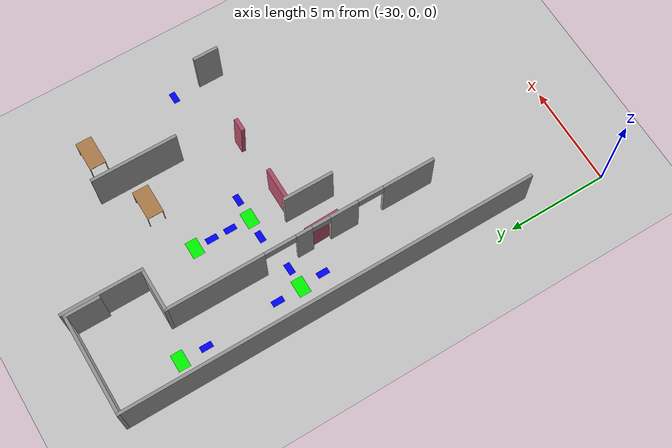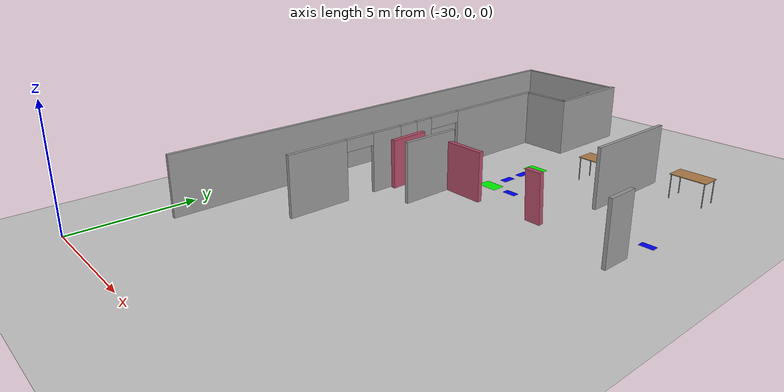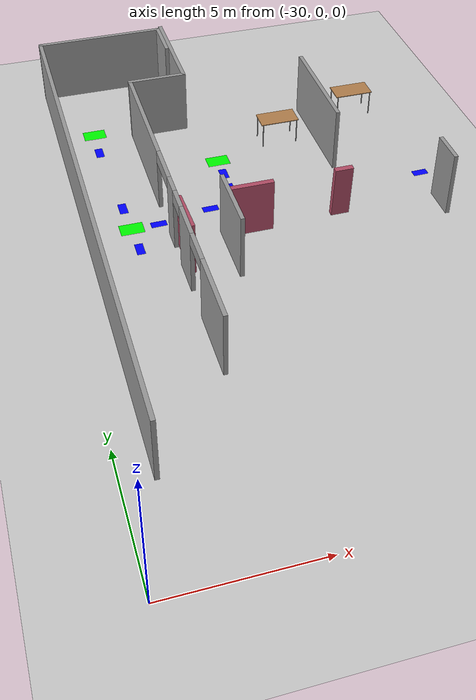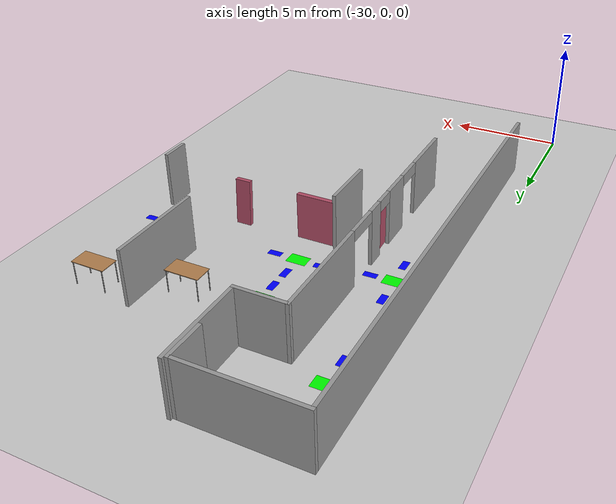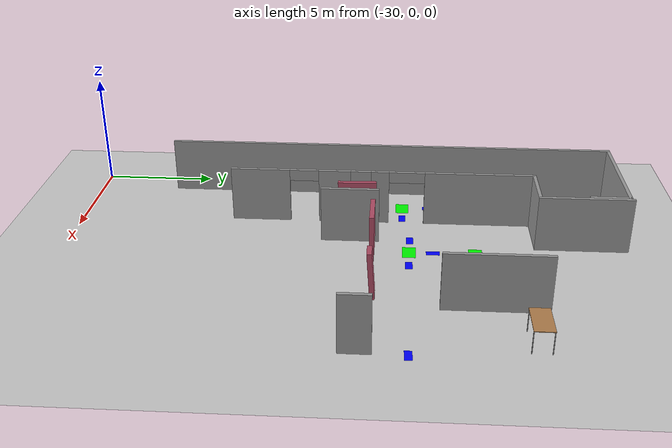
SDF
<sdf version="1.6">
 <world name="default">
  <model name="ground_plane">
   <pose>0 0 0.001 0 -0 0</pose>
   <static>1</static>
   <link name="link">
    <collision name="collision">
     <geometry><plane><normal>0 0 1</normal><size>100 100</size></plane></geometry>
     <surface><friction><ode><mu>100</mu><mu2>50</mu2></ode></friction></surface>
    </collision>
    <visual name="visual">
     <cast_shadows>0</cast_shadows>
     <geometry><plane><normal>0 0 1</normal><size>100 100</size></plane></geometry>
     <material>
      <script><uri>file://media/materials/scripts/gazebo.material</uri><name>Gazebo/Grey</name></script>
     </material>
    </visual>
   </link>
  </model>
  <model name="table">
   <static>1</static>
   <link name="link">
    <collision name="surface">
     <pose>0 0 1 0 -0 0</pose>
     <geometry><box><size>1.5 0.8 0.03</size></box></geometry>
     <surface><friction><ode><mu>0.6</mu><mu2>0.6</mu2></ode></friction></surface>
    </collision>
    <visual name="visual1">
     <pose>0 0 1 0 -0 0</pose>
     <geometry><box><size>1.5 0.8 0.03</size></box></geometry>
     <material>
      <script><uri>file://media/materials/scripts/gazebo.material</uri><name>Gazebo/Wood</name></script>
     </material>
    </visual>
    <collision name="front_left_leg">
     <pose>0.68 0.38 0.5 0 -0 0</pose>
     <geometry><cylinder><radius>0.02</radius><length>1</length></cylinder></geometry>
    </collision>
    <visual name="front_left_leg">
     <pose>0.68 0.38 0.5 0 -0 0</pose>
     <geometry><cylinder><radius>0.02</radius><length>1</length></cylinder></geometry>
     <material>
      <script><uri>file://media/materials/scripts/gazebo.material</uri><name>Gazebo/Grey</name></script>
     </material>
    </visual>
    <collision name="front_right_leg">
     <pose>0.68 -0.38 0.5 0 -0 0</pose>
     <geometry><cylinder><radius>0.02</radius><length>1</length></cylinder></geometry>
    </collision>
    <visual name="front_right_leg">
     <pose>0.68 -0.38 0.5 0 -0 0</pose>
     <geometry><cylinder><radius>0.02</radius><length>1</length></cylinder></geometry>
     <material>
      <script><uri>file://media/materials/scripts/gazebo.material</uri><name>Gazebo/Grey</name></script>
     </material>
    </visual>
    <collision name="back_right_leg">
     <pose>-0.68 -0.38 0.5 0 -0 0</pose>
     <geometry><cylinder><radius>0.02</radius><length>1</length></cylinder></geometry>
    </collision>
    <visual name="back_right_leg">
     <pose>-0.68 -0.38 0.5 0 -0 0</pose>
     <geometry><cylinder><radius>0.02</radius><length>1</length></cylinder></geometry>
     <material>
      <script><uri>file://media/materials/scripts/gazebo.material</uri><name>Gazebo/Grey</name></script>
     </material>
    </visual>
    <collision name="back_left_leg">
     <pose>-0.68 0.38 0.5 0 -0 0</pose>
     <geometry><cylinder><radius>0.02</radius><length>1</length></cylinder></geometry>
    </collision>
    <visual name="back_left_leg">
     <pose>-0.68 0.38 0.5 0 -0 0</pose>
     <geometry><cylinder><radius>0.02</radius><length>1</length></cylinder></geometry>
     <material>
      <script><uri>file://media/materials/scripts/gazebo.material</uri><name>Gazebo/Grey</name></script>
     </material>
    </visual>
   </link>
   <pose>-20.6493 18.5224 0.001 0 -0 0</pose>
  </model>
  <model name="table_0">
   <static>1</static>
   <link name="link">
    <collision name="surface">
     <pose>0 0 1 0 -0 0</pose>
     <geometry><box><size>1.5 0.8 0.03</size></box></geometry>
     <surface><friction><ode><mu>0.6</mu><mu2>0.6</mu2></ode></friction></surface>
    </collision>
    <visual name="visual1">
     <pose>0 0 1 0 -0 0</pose>
     <geometry><box><size>1.5 0.8 0.03</size></box></geometry>
     <material>
      <script><uri>file://media/materials/scripts/gazebo.material</uri><name>Gazebo/Wood</name></script>
     </material>
    </visual>
    <collision name="front_left_leg">
     <pose>0.68 0.38 0.5 0 -0 0</pose>
     <geometry><cylinder><radius>0.02</radius><length>1</length></cylinder></geometry>
    </collision>
    <visual name="front_left_leg">
     <pose>0.68 0.38 0.5 0 -0 0</pose>
     <geometry><cylinder><radius>0.02</radius><length>1</length></cylinder></geometry>
     <material>
      <script><uri>file://media/materials/scripts/gazebo.material</uri><name>Gazebo/Grey</name></script>
     </material>
    </visual>
    <collision name="front_right_leg">
     <pose>0.68 -0.38 0.5 0 -0 0</pose>
     <geometry><cylinder><radius>0.02</radius><length>1</length></cylinder></geometry>
    </collision>
    <visual name="front_right_leg">
     <pose>0.68 -0.38 0.5 0 -0 0</pose>
     <geometry><cylinder><radius>0.02</radius><length>1</length></cylinder></geometry>
     <material>
      <script><uri>file://media/materials/scripts/gazebo.material</uri><name>Gazebo/Grey</name></script>
     </material>
    </visual>
    <collision name="back_right_leg">
     <pose>-0.68 -0.38 0.5 0 -0 0</pose>
     <geometry><cylinder><radius>0.02</radius><length>1</length></cylinder></geometry>
    </collision>
    <visual name="back_right_leg">
     <pose>-0.68 -0.38 0.5 0 -0 0</pose>
     <geometry><cylinder><radius>0.02</radius><length>1</length></cylinder></geometry>
     <material>
      <script><uri>file://media/materials/scripts/gazebo.material</uri><name>Gazebo/Grey</name></script>
     </material>
    </visual>
    <collision name="back_left_leg">
     <pose>-0.68 0.38 0.5 0 -0 0</pose>
     <geometry><cylinder><radius>0.02</radius><length>1</length></cylinder></geometry>
    </collision>
    <visual name="back_left_leg">
     <pose>-0.68 0.38 0.5 0 -0 0</pose>
     <geometry><cylinder><radius>0.02</radius><length>1</length></cylinder></geometry>
     <material>
      <script><uri>file://media/materials/scripts/gazebo.material</uri><name>Gazebo/Grey</name></script>
     </material>
    </visual>
   </link>
   <pose>-17.1552 19.6086 0.001 0 -0 0</pose>
  </model>
  <model name="doorOutside_2_clone">
   <link name="link">
    <pose>0.155539 -0.366282 0.216958 0 -0 0</pose>
    <inertial>
     <mass>2.13199</mass>
     <inertia>
      <ixx>0.452656</ixx>
      <ixy>0</ixy>
      <ixz>0</ixz>
      <iyy>0.796738</iyy>
      <iyz>0</iyz>
      <izz>0.699414</izz>
     </inertia>
     <pose>0 0 0.001 0 -0 0</pose>
    </inertial>
    <visual name="visual">
     <geometry><box><size>1.71368 0.198843 2.05986</size></box></geometry>
     <material>
      <script><name>Gazebo/Grey</name><uri>file://media/materials/scripts/gazebo.material</uri></script>
      <ambient>0.7 0.3 0.4 1</ambient>
      <diffuse>0.7 0.7 0.7 1</diffuse>
      <specular>0.01 0.01 0.01 1</specular>
      <emissive>0 0 0 1</emissive>
      <shader type="vertex"><normal_map>__default__</normal_map></shader>
      <lighting>0</lighting>
     </material>
     <pose>0 0 0.001 0 -0 0</pose>
    </visual>
    <collision name="collision">
     <pose>0 0 0.001 0 -0 0</pose>
     <geometry><box><size>1.71368 0.198843 2.05986</size></box></geometry>
     <surface>
      <friction>
       <ode><mu>1</mu><mu2>1</mu2><fdir1>0 0 0</fdir1><slip1>0</slip1><slip2>0</slip2></ode>
       <torsional>
        <coefficient>1</coefficient>
        <patch_radius>0</patch_radius>
        <surface_radius>0</surface_radius>
        <use_patch_radius>1</use_patch_radius>
        <ode><slip>0</slip></ode>
       </torsional>
      </friction>
      <bounce><restitution_coefficient>0</restitution_coefficient><threshold>1e+06</threshold></bounce>
      <contact>
       <collide_without_contact>0</collide_without_contact>
       <collide_without_contact_bitmask>1</collide_without_contact_bitmask>
       <collide_bitmask>1</collide_bitmask>
       <ode>
        <soft_cfm>0</soft_cfm>
        <soft_erp>0.2</soft_erp>
        <kp>1e+13</kp>
        <kd>1</kd>
        <max_vel>0.01</max_vel>
        <min_depth>0</min_depth>
       </ode>
       <bullet>
        <split_impulse>1</split_impulse>
        <split_impulse_penetration_threshold>-0.01</split_impulse_penetration_threshold>
        <soft_cfm>0</soft_cfm>
        <soft_erp>0.2</soft_erp>
        <kp>1e+13</kp>
        <kd>1</kd>
       </bullet>
      </contact>
     </surface>
    </collision>
   </link>
   <static>0</static>
   <pose>-26.2144 12.3643 0.811972 0 -0 1.59829</pose>
  </model>
  <model name="doorOutside_2_clone_0">
   <link name="link">
    <pose>0.155539 -0.366282 0.216958 0 -0 0</pose>
    <inertial>
     <mass>2.13199</mass>
     <inertia>
      <ixx>0.452656</ixx>
      <ixy>0</ixy>
      <ixz>0</ixz>
      <iyy>0.796738</iyy>
      <iyz>0</iyz>
      <izz>0.699414</izz>
     </inertia>
     <pose>0 0 0.001 0 -0 0</pose>
    </inertial>
    <visual name="visual">
     <geometry><box><size>1.71368 0.198843 2.05986</size></box></geometry>
     <material>
      <script><name>Gazebo/Grey</name><uri>file://media/materials/scripts/gazebo.material</uri></script>
      <ambient>0.7 0.3 0.4 1</ambient>
      <diffuse>0.7 0.7 0.7 1</diffuse>
      <specular>0.01 0.01 0.01 1</specular>
      <emissive>0 0 0 1</emissive>
      <shader type="vertex"><normal_map>__default__</normal_map></shader>
      <lighting>0</lighting>
     </material>
     <pose>0 0 0.001 0 -0 0</pose>
    </visual>
    <collision name="collision">
     <pose>0 0 0.001 0 -0 0</pose>
     <geometry><box><size>1.71368 0.198843 2.05986</size></box></geometry>
     <surface>
      <friction>
       <ode><mu>1</mu><mu2>1</mu2><fdir1>0 0 0</fdir1><slip1>0</slip1><slip2>0</slip2></ode>
       <torsional>
        <coefficient>1</coefficient>
        <patch_radius>0</patch_radius>
        <surface_radius>0</surface_radius>
        <use_patch_radius>1</use_patch_radius>
        <ode><slip>0</slip></ode>
       </torsional>
      </friction>
      <bounce><restitution_coefficient>0</restitution_coefficient><threshold>1e+06</threshold></bounce>
      <contact>
       <collide_without_contact>0</collide_without_contact>
       <collide_without_contact_bitmask>1</collide_without_contact_bitmask>
       <collide_bitmask>1</collide_bitmask>
       <ode>
        <soft_cfm>0</soft_cfm>
        <soft_erp>0.2</soft_erp>
        <kp>1e+13</kp>
        <kd>1</kd>
        <max_vel>0.01</max_vel>
        <min_depth>0</min_depth>
       </ode>
       <bullet>
        <split_impulse>1</split_impulse>
        <split_impulse_penetration_threshold>-0.01</split_impulse_penetration_threshold>
        <soft_cfm>0</soft_cfm>
        <soft_erp>0.2</soft_erp>
        <kp>1e+13</kp>
        <kd>1</kd>
       </bullet>
      </contact>
     </surface>
    </collision>
   </link>
   <static>0</static>
   <pose>-23.205 12.9224 0.811969 1e-06 5e-06 3.14156</pose>
  </model>
  <model name="doorInside_1">
   <link name="link">
    <pose>0.712274 -0.220649 0.216958 0 -0 0</pose>
    <inertial>
     <mass>0.840612</mass>
     <inertia>
      <ixx>0.178476</ixx>
      <ixy>0</ixy>
      <ixz>0</ixz>
      <iyy>0.140406</iyy>
      <iyz>0</iyz>
      <izz>0.102032</izz>
     </inertia>
     <pose>0 0 0.001 0 -0 0</pose>
    </inertial>
    <visual name="visual">
     <geometry><box><size>0.675678 0.198843 2.05986</size></box></geometry>
     <material>
      <script><name>Gazebo/Grey</name><uri>file://media/materials/scripts/gazebo.material</uri></script>
      <ambient>0.7 0.3 0.4 1</ambient>
      <diffuse>0.7 0.7 0.7 1</diffuse>
      <specular>0.01 0.01 0.01 1</specular>
      <emissive>1 0 0 1</emissive>
      <shader type="vertex"><normal_map>__default__</normal_map></shader>
      <lighting>0</lighting>
     </material>
     <pose>0 0 0.001 0 -0 0</pose>
    </visual>
    <collision name="collision">
     <pose>0 0 0.001 0 -0 0</pose>
     <geometry><box><size>0.675678 0.198843 2.05986</size></box></geometry>
     <surface>
      <friction>
       <ode><mu>1</mu><mu2>1</mu2><fdir1>0 0 0</fdir1><slip1>0</slip1><slip2>0</slip2></ode>
       <torsional>
        <coefficient>1</coefficient>
        <patch_radius>0</patch_radius>
        <surface_radius>0</surface_radius>
        <use_patch_radius>1</use_patch_radius>
        <ode><slip>0</slip></ode>
       </torsional>
      </friction>
      <bounce><restitution_coefficient>0</restitution_coefficient><threshold>1e+06</threshold></bounce>
      <contact>
       <collide_without_contact>0</collide_without_contact>
       <collide_without_contact_bitmask>1</collide_without_contact_bitmask>
       <collide_bitmask>1</collide_bitmask>
       <ode>
        <soft_cfm>0</soft_cfm>
        <soft_erp>0.2</soft_erp>
        <kp>1e+13</kp>
        <kd>1</kd>
        <max_vel>0.01</max_vel>
        <min_depth>0</min_depth>
       </ode>
       <bullet>
        <split_impulse>1</split_impulse>
        <split_impulse_penetration_threshold>-0.01</split_impulse_penetration_threshold>
        <soft_cfm>0</soft_cfm>
        <soft_erp>0.2</soft_erp>
        <kp>1e+13</kp>
        <kd>1</kd>
       </bullet>
      </contact>
     </surface>
    </collision>
   </link>
   <static>0</static>
   <pose>-20.6352 13.5903 0.830633 0.063451 -1e-06 -0</pose>
  </model>
  <model name="corridor">
   <link name="link">
    <pose>0 0 0.001 0 -0 0</pose>
    <inertial>
     <mass>0.0352517</mass>
     <inertia>
      <ixx>0.00099707</ixx>
      <ixy>0</ixy>
      <ixz>0</ixz>
      <iyy>0.00220147</iyy>
      <iyz>0</iyz>
      <izz>0.0031692</izz>
     </inertia>
     <pose>0 0 0.001 0 -0 0</pose>
    </inertial>
    <visual name="visual">
     <geometry><box><size>0.862743 0.578289 1e-06</size></box></geometry>
     <material>
      <script><name>Gazebo/Grey</name><uri>file://media/materials/scripts/gazebo.material</uri></script>
      <ambient>0 1 0 1</ambient>
      <diffuse>0 1 0 1</diffuse>
      <specular>0 1 0 1</specular>
      <emissive>0 1 0 1</emissive>
      <shader type="vertex"><normal_map>__default__</normal_map></shader>
     </material>
     <pose>0 0 0.001 0 -0 0</pose>
    </visual>
    <collision name="collision">
     <pose>0 0 0.001 0 -0 0</pose>
     <geometry><box><size>0.862743 0.578289 0.000477</size></box></geometry>
     <surface>
      <friction>
       <ode><mu>1</mu><mu2>1</mu2><fdir1>0 0 0</fdir1><slip1>0</slip1><slip2>0</slip2></ode>
       <torsional>
        <coefficient>1</coefficient>
        <patch_radius>0</patch_radius>
        <surface_radius>0</surface_radius>
        <use_patch_radius>1</use_patch_radius>
        <ode><slip>0</slip></ode>
       </torsional>
      </friction>
      <bounce><restitution_coefficient>0</restitution_coefficient><threshold>1e+06</threshold></bounce>
      <contact>
       <collide_without_contact>0</collide_without_contact>
       <collide_without_contact_bitmask>1</collide_without_contact_bitmask>
       <collide_bitmask>1</collide_bitmask>
       <ode>
        <soft_cfm>0</soft_cfm>
        <soft_erp>0.2</soft_erp>
        <kp>1e+13</kp>
        <kd>1</kd>
        <max_vel>0.01</max_vel>
        <min_depth>0</min_depth>
       </ode>
       <bullet>
        <split_impulse>1</split_impulse>
        <split_impulse_penetration_threshold>-0.01</split_impulse_penetration_threshold>
        <soft_cfm>0</soft_cfm>
        <soft_erp>0.2</soft_erp>
        <kp>1e+13</kp>
        <kd>1</kd>
       </bullet>
      </contact>
     </surface>
    </collision>
   </link>
   <static>1</static>
   <pose>-27.5631 20.7542 0 0 -0 0</pose>
  </model>
  <model name="corridor_0">
   <link name="link">
    <pose>0 0 0.001 0 -0 0</pose>
    <inertial>
     <mass>0.0352517</mass>
     <inertia>
      <ixx>0.00099707</ixx>
      <ixy>0</ixy>
      <ixz>0</ixz>
      <iyy>0.00220147</iyy>
      <iyz>0</iyz>
      <izz>0.0031692</izz>
     </inertia>
     <pose>0 0 0.001 0 -0 0</pose>
    </inertial>
    <visual name="visual">
     <geometry><box><size>0.862743 0.578289 1e-06</size></box></geometry>
     <material>
      <script><name>Gazebo/Grey</name><uri>file://media/materials/scripts/gazebo.material</uri></script>
      <ambient>0 1 0 1</ambient>
      <diffuse>0 1 0 1</diffuse>
      <specular>0 1 0 1</specular>
      <emissive>0 1 0 1</emissive>
      <shader type="vertex"><normal_map>__default__</normal_map></shader>
     </material>
     <pose>0 0 0.001 0 -0 0</pose>
    </visual>
    <collision name="collision">
     <pose>0 0 0.001 0 -0 0</pose>
     <geometry><box><size>0.862743 0.578289 0.000477</size></box></geometry>
     <surface>
      <friction>
       <ode><mu>1</mu><mu2>1</mu2><fdir1>0 0 0</fdir1><slip1>0</slip1><slip2>0</slip2></ode>
       <torsional>
        <coefficient>1</coefficient>
        <patch_radius>0</patch_radius>
        <surface_radius>0</surface_radius>
        <use_patch_radius>1</use_patch_radius>
        <ode><slip>0</slip></ode>
       </torsional>
      </friction>
      <bounce><restitution_coefficient>0</restitution_coefficient><threshold>1e+06</threshold></bounce>
      <contact>
       <collide_without_contact>0</collide_without_contact>
       <collide_without_contact_bitmask>1</collide_without_contact_bitmask>
       <collide_bitmask>1</collide_bitmask>
       <ode>
        <soft_cfm>0</soft_cfm>
        <soft_erp>0.2</soft_erp>
        <kp>1e+13</kp>
        <kd>1</kd>
        <max_vel>0.01</max_vel>
        <min_depth>0</min_depth>
       </ode>
       <bullet>
        <split_impulse>1</split_impulse>
        <split_impulse_penetration_threshold>-0.01</split_impulse_penetration_threshold>
        <soft_cfm>0</soft_cfm>
        <soft_erp>0.2</soft_erp>
        <kp>1e+13</kp>
        <kd>1</kd>
       </bullet>
      </contact>
     </surface>
    </collision>
   </link>
   <static>1</static>
   <pose>-27.3637 14.5565 0 0 -0 0</pose>
  </model>
  <model name="corridor_22">
   <link name="link">
    <pose>0 0 0.001 0 -0 0</pose>
    <inertial>
     <mass>0.0352517</mass>
     <inertia>
      <ixx>0.00099707</ixx>
      <ixy>0</ixy>
      <ixz>0</ixz>
      <iyy>0.00220147</iyy>
      <iyz>0</iyz>
      <izz>0.0031692</izz>
     </inertia>
     <pose>0 0 0.001 0 -0 0</pose>
    </inertial>
    <visual name="visual">
     <geometry><box><size>0.862743 0.578289 1e-06</size></box></geometry>
     <material>
      <script><name>Gazebo/Grey</name><uri>file://media/materials/scripts/gazebo.material</uri></script>
      <ambient>0 1 0 1</ambient>
      <diffuse>0 1 0 1</diffuse>
      <specular>0 1 0 1</specular>
      <emissive>0 1 0 1</emissive>
      <shader type="vertex"><normal_map>__default__</normal_map></shader>
     </material>
     <pose>0 0 0.001 0 -0 0</pose>
    </visual>
    <collision name="collision">
     <pose>0 0 0.001 0 -0 0</pose>
     <geometry><box><size>0.862743 0.578289 0.000477</size></box></geometry>
     <surface>
      <friction>
       <ode><mu>1</mu><mu2>1</mu2><fdir1>0 0 0</fdir1><slip1>0</slip1><slip2>0</slip2></ode>
       <torsional>
        <coefficient>1</coefficient>
        <patch_radius>0</patch_radius>
        <surface_radius>0</surface_radius>
        <use_patch_radius>1</use_patch_radius>
        <ode><slip>0</slip></ode>
       </torsional>
      </friction>
      <bounce><restitution_coefficient>0</restitution_coefficient><threshold>1e+06</threshold></bounce>
      <contact>
       <collide_without_contact>0</collide_without_contact>
       <collide_without_contact_bitmask>1</collide_without_contact_bitmask>
       <collide_bitmask>1</collide_bitmask>
       <ode>
        <soft_cfm>0</soft_cfm>
        <soft_erp>0.2</soft_erp>
        <kp>1e+13</kp>
        <kd>1</kd>
        <max_vel>0.01</max_vel>
        <min_depth>0</min_depth>
       </ode>
       <bullet>
        <split_impulse>1</split_impulse>
        <split_impulse_penetration_threshold>-0.01</split_impulse_penetration_threshold>
        <soft_cfm>0</soft_cfm>
        <soft_erp>0.2</soft_erp>
        <kp>1e+13</kp>
        <kd>1</kd>
       </bullet>
      </contact>
     </surface>
    </collision>
   </link>
   <static>1</static>
   <pose>-23.3369 14.8778 0 0 -0 0</pose>
  </model>
  <model name="Se1_cut">
   <pose>3.62364 13.9276 0 0 -0 0</pose>
   <link name="Wall_0">
    <collision name="Wall_0_Collision">
     <geometry><box><size>1.75 0.15 2.5</size></box></geometry>
     <pose>0 0 1.25 0 -0 0</pose>
    </collision>
    <visual name="Wall_0_Visual">
     <pose>0 0 1.25 0 -0 0</pose>
     <geometry><box><size>1.75 0.15 2.5</size></box></geometry>
     <material>
      <script><uri>file://media/materials/scripts/gazebo.material</uri><name>Gazebo/Grey</name></script>
      <ambient>1 1 1 1</ambient>
     </material>
    </visual>
    <pose>-27.7314 9.325 0 0 -0 1.5708</pose>
   </link>
   <link name="Wall_1">
    <collision name="Wall_1_Collision">
     <geometry><box><size>5 0.15 2.5</size></box></geometry>
     <pose>0 0 1.25 0 -0 0</pose>
    </collision>
    <visual name="Wall_1_Visual">
     <pose>0 0 1.25 0 -0 0</pose>
     <geometry><box><size>5 0.15 2.5</size></box></geometry>
     <material>
      <script><uri>file://media/materials/scripts/gazebo.material</uri><name>Gazebo/Grey</name></script>
      <ambient>1 1 1 1</ambient>
     </material>
    </visual>
    <pose>-30.1564 10.125 0 0 -0 3.14159</pose>
   </link>
   <link name="Wall_18">
    <collision name="Wall_18_Collision">
     <geometry><box><size>2.5 0.15 2.5</size></box></geometry>
     <pose>0 0 1.25 0 -0 0</pose>
    </collision>
    <visual name="Wall_18_Visual">
     <pose>0 0 1.25 0 -0 0</pose>
     <geometry><box><size>2.5 0.15 2.5</size></box></geometry>
     <material>
      <script><uri>file://media/materials/scripts/gazebo.material</uri><name>Gazebo/Grey</name></script>
      <ambient>1 1 1 1</ambient>
     </material>
    </visual>
    <pose>-27.916 -1.63307 0 0 0 -1.5708</pose>
   </link>
   <link name="Wall_2">
    <collision name="Wall_2_Collision">
     <geometry><box><size>20.5 0.15 2.5</size></box></geometry>
     <pose>0 0 1.25 0 -0 0</pose>
    </collision>
    <visual name="Wall_2_Visual">
     <pose>0 0 1.25 0 -0 0</pose>
     <geometry><box><size>20.5 0.15 2.5</size></box></geometry>
     <material>
      <script><uri>file://media/materials/scripts/gazebo.material</uri><name>Gazebo/Grey</name></script>
      <ambient>1 1 1 1</ambient>
     </material>
    </visual>
    <pose>-32.5814 -0.05 0 0 0 -1.5708</pose>
   </link>
   <link name="Wall_25">
    <collision name="Wall_25_Collision">
     <geometry><box><size>1.25 0.15 2.5</size></box></geometry>
     <pose>0 0 1.25 0 -0 0</pose>
    </collision>
    <visual name="Wall_25_Visual">
     <pose>0 0 1.25 0 -0 0</pose>
     <geometry><box><size>1.25 0.15 2.5</size></box></geometry>
     <material>
      <script><uri>file://media/materials/scripts/gazebo.material</uri><name>Gazebo/Grey</name></script>
      <ambient>1 1 1 1</ambient>
     </material>
    </visual>
    <pose>-19.781 -1.01852 0 0 0 -1.5708</pose>
   </link>
   <link name="Wall_49">
    <collision name="Wall_49_Collision">
     <geometry><box><size>4.25 0.15 2.5</size></box></geometry>
     <pose>0 0 1.25 0 -0 0</pose>
    </collision>
    <visual name="Wall_49_Visual">
     <pose>0 0 1.25 0 -0 0</pose>
     <geometry><box><size>4.25 0.15 2.5</size></box></geometry>
     <material>
      <script><uri>file://media/materials/scripts/gazebo.material</uri><name>Gazebo/Grey</name></script>
      <ambient>1 1 1 1</ambient>
     </material>
    </visual>
    <pose>-22.7583 4.23959 0 0 0 -1.5708</pose>
   </link>
   <link name="Wall_6">
    <collision name="Wall_6_Collision">
     <geometry><box><size>4 0.15 2.5</size></box></geometry>
     <pose>0 0 1.25 0 -0 0</pose>
    </collision>
    <visual name="Wall_6_Visual">
     <pose>0 0 1.25 0 -0 0</pose>
     <geometry><box><size>4 0.15 2.5</size></box></geometry>
     <material>
      <script><uri>file://media/materials/scripts/gazebo.material</uri><name>Gazebo/Grey</name></script>
      <ambient>1 1 1 1</ambient>
     </material>
    </visual>
    <pose>-27.5814 8.3 0 0 -0 1.5708</pose>
   </link>
   <link name="Wall_8">
    <collision name="Wall_8_Collision">
     <geometry><box><size>2.25 0.15 2.5</size></box></geometry>
     <pose>0 0 1.25 0 -0 0</pose>
    </collision>
    <visual name="Wall_8_Visual">
     <pose>0 0 1.25 0 -0 0</pose>
     <geometry><box><size>2.25 0.15 2.5</size></box></geometry>
     <material>
      <script><uri>file://media/materials/scripts/gazebo.material</uri><name>Gazebo/Grey</name></script>
      <ambient>1 1 1 1</ambient>
     </material>
    </visual>
    <pose>-28.6314 6.375 0 0 -0 3.14159</pose>
   </link>
   <link name="Wall_9">
    <pose>-29.6814 -0.3 0 0 0 -1.5708</pose>
    <visual name="Wall_9_Visual_0">
     <pose>-4.31652 0 1.25 0 -0 0</pose>
     <geometry><box><size>4.86697 0.15 2.5</size></box></geometry>
     <material>
      <script><uri>file://media/materials/scripts/gazebo.material</uri><name>Gazebo/Grey</name></script>
      <ambient>1 1 1 1</ambient>
     </material>
    </visual>
    <collision name="Wall_9_Collision_0">
     <geometry><box><size>4.86697 0.15 2.5</size></box></geometry>
     <pose>-4.31652 0 1.25 0 -0 0</pose>
    </collision>
    <visual name="Wall_9_Visual_1">
     <pose>0.092822 0 1.25 0 -0 0</pose>
     <geometry><box><size>0.80276 0.15 2.5</size></box></geometry>
     <material>
      <script><uri>file://media/materials/scripts/gazebo.material</uri><name>Gazebo/Grey</name></script>
      <ambient>1 1 1 1</ambient>
     </material>
    </visual>
    <collision name="Wall_9_Collision_1">
     <geometry><box><size>0.80276 0.15 2.5</size></box></geometry>
     <pose>0.092822 0 1.25 0 -0 0</pose>
    </collision>
    <visual name="Wall_9_Visual_2">
     <pose>2.10756 0 1.25 0 -0 0</pose>
     <geometry><box><size>1.42671 0.15 2.5</size></box></geometry>
     <material>
      <script><uri>file://media/materials/scripts/gazebo.material</uri><name>Gazebo/Grey</name></script>
      <ambient>1 1 1 1</ambient>
     </material>
    </visual>
    <collision name="Wall_9_Collision_2">
     <geometry><box><size>1.42671 0.15 2.5</size></box></geometry>
     <pose>2.10756 0 1.25 0 -0 0</pose>
    </collision>
    <visual name="Wall_9_Visual_3">
     <pose>5.43207 0 1.25 0 -0 0</pose>
     <geometry><box><size>2.63587 0.15 2.5</size></box></geometry>
     <material>
      <script><uri>file://media/materials/scripts/gazebo.material</uri><name>Gazebo/Grey</name></script>
      <ambient>1 1 1 1</ambient>
     </material>
    </visual>
    <collision name="Wall_9_Collision_3">
     <geometry><box><size>2.63587 0.15 2.5</size></box></geometry>
     <pose>5.43207 0 1.25 0 -0 0</pose>
    </collision>
    <visual name="Wall_9_Visual_4">
     <pose>-1.0958 0 2.25 0 -0 0</pose>
     <geometry><box><size>1.57448 0.15 0.5</size></box></geometry>
     <material>
      <script><uri>file://media/materials/scripts/gazebo.material</uri><name>Gazebo/Grey</name></script>
      <ambient>1 1 1 1</ambient>
     </material>
    </visual>
    <collision name="Wall_9_Collision_4">
     <geometry><box><size>1.57448 0.15 0.5</size></box></geometry>
     <pose>-1.0958 0 2.25 0 -0 0</pose>
    </collision>
    <visual name="Wall_9_Visual_5">
     <pose>0.944202 0 2.25 0 -0 0</pose>
     <geometry><box><size>0.9 0.15 0.5</size></box></geometry>
     <material>
      <script><uri>file://media/materials/scripts/gazebo.material</uri><name>Gazebo/Grey</name></script>
      <ambient>1 1 1 1</ambient>
     </material>
    </visual>
    <collision name="Wall_9_Collision_5">
     <geometry><box><size>0.9 0.15 0.5</size></box></geometry>
     <pose>0.944202 0 2.25 0 -0 0</pose>
    </collision>
    <visual name="Wall_9_Visual_6">
     <pose>3.46752 0 2.25 0 -0 0</pose>
     <geometry><box><size>1.29322 0.15 0.5</size></box></geometry>
     <material>
      <script><uri>file://media/materials/scripts/gazebo.material</uri><name>Gazebo/Grey</name></script>
      <ambient>1 1 1 1</ambient>
     </material>
    </visual>
    <collision name="Wall_9_Collision_6">
     <geometry><box><size>1.29322 0.15 0.5</size></box></geometry>
     <pose>3.46752 0 2.25 0 -0 0</pose>
    </collision>
   </link>
   <static>1</static>
  </model>
  <model name="intersectionXS">
   <link name="link">
    <pose>0 0 0.001 0 -0 0</pose>
    <inertial>
     <mass>0.0122177</mass>
     <inertia>
      <ixx>0.000345567</ixx>
      <ixy>0</ixy>
      <ixz>0</ixz>
      <iyy>9.61239e-05</iyy>
      <iyz>0</iyz>
      <izz>0.000431523</izz>
     </inertia>
    </inertial>
    <visual name="visual">
     <geometry><box><size>0.299013 0.578289 1e-06</size></box></geometry>
     <material>
      <script><name>Gazebo/Grey</name><uri>file://media/materials/scripts/gazebo.material</uri></script>
      <ambient>0 0 1 1</ambient>
      <diffuse>0 0 1 1</diffuse>
      <specular>0 0 1 1</specular>
      <emissive>0 0 1 1</emissive>
      <shader type="vertex"><normal_map>__default__</normal_map></shader>
     </material>
     <pose>0 0 0.001 0 -0 0</pose>
    </visual>
    <collision name="collision">
     <pose>0 0 0.001 0 -0 0</pose>
     <geometry><box><size>0.299013 0.578289 0.000477</size></box></geometry>
     <surface>
      <friction>
       <ode><mu>1</mu><mu2>1</mu2><fdir1>0 0 0</fdir1><slip1>0</slip1><slip2>0</slip2></ode>
       <torsional>
        <coefficient>1</coefficient>
        <patch_radius>0</patch_radius>
        <surface_radius>0</surface_radius>
        <use_patch_radius>1</use_patch_radius>
        <ode><slip>0</slip></ode>
       </torsional>
      </friction>
      <bounce><restitution_coefficient>0</restitution_coefficient><threshold>1e+06</threshold></bounce>
      <contact>
       <collide_without_contact>0</collide_without_contact>
       <collide_without_contact_bitmask>1</collide_without_contact_bitmask>
       <collide_bitmask>1</collide_bitmask>
       <ode>
        <soft_cfm>0</soft_cfm>
        <soft_erp>0.2</soft_erp>
        <kp>1e+13</kp>
        <kd>1</kd>
        <max_vel>0.01</max_vel>
        <min_depth>0</min_depth>
       </ode>
       <bullet>
        <split_impulse>1</split_impulse>
        <split_impulse_penetration_threshold>-0.01</split_impulse_penetration_threshold>
        <soft_cfm>0</soft_cfm>
        <soft_erp>0.2</soft_erp>
        <kp>1e+13</kp>
        <kd>1</kd>
       </bullet>
      </contact>
     </surface>
    </collision>
   </link>
   <static>1</static>
   <pose>-27.6025 19.4899 0 0 -0 0</pose>
  </model>
  <model name="intersectionXS_0">
   <link name="link">
    <pose>0 0 0.001 0 -0 0</pose>
    <inertial>
     <mass>0.0122177</mass>
     <inertia>
      <ixx>0.000345567</ixx>
      <ixy>0</ixy>
      <ixz>0</ixz>
      <iyy>9.61239e-05</iyy>
      <iyz>0</iyz>
      <izz>0.000431523</izz>
     </inertia>
    </inertial>
    <visual name="visual">
     <geometry><box><size>0.299013 0.578289 1e-06</size></box></geometry>
     <material>
      <script><name>Gazebo/Grey</name><uri>file://media/materials/scripts/gazebo.material</uri></script>
      <ambient>0 0 1 1</ambient>
      <diffuse>0 0 1 1</diffuse>
      <specular>0 0 1 1</specular>
      <emissive>0 0 1 1</emissive>
      <shader type="vertex"><normal_map>__default__</normal_map></shader>
     </material>
     <pose>0 0 0.001 0 -0 0</pose>
    </visual>
    <collision name="collision">
     <pose>0 0 0.001 0 -0 0</pose>
     <geometry><box><size>0.299013 0.578289 0.000477</size></box></geometry>
     <surface>
      <friction>
       <ode><mu>1</mu><mu2>1</mu2><fdir1>0 0 0</fdir1><slip1>0</slip1><slip2>0</slip2></ode>
       <torsional>
        <coefficient>1</coefficient>
        <patch_radius>0</patch_radius>
        <surface_radius>0</surface_radius>
        <use_patch_radius>1</use_patch_radius>
        <ode><slip>0</slip></ode>
       </torsional>
      </friction>
      <bounce><restitution_coefficient>0</restitution_coefficient><threshold>1e+06</threshold></bounce>
      <contact>
       <collide_without_contact>0</collide_without_contact>
       <collide_without_contact_bitmask>1</collide_without_contact_bitmask>
       <collide_bitmask>1</collide_bitmask>
       <ode>
        <soft_cfm>0</soft_cfm>
        <soft_erp>0.2</soft_erp>
        <kp>1e+13</kp>
        <kd>1</kd>
        <max_vel>0.01</max_vel>
        <min_depth>0</min_depth>
       </ode>
       <bullet>
        <split_impulse>1</split_impulse>
        <split_impulse_penetration_threshold>-0.01</split_impulse_penetration_threshold>
        <soft_cfm>0</soft_cfm>
        <soft_erp>0.2</soft_erp>
        <kp>1e+13</kp>
        <kd>1</kd>
       </bullet>
      </contact>
     </surface>
    </collision>
   </link>
   <static>1</static>
   <pose>-27.432 15.7839 0 0 -0 0</pose>
  </model>
  <model name="intersectionXS_1">
   <link name="link">
    <pose>0 0 0.001 0 -0 0</pose>
    <inertial>
     <mass>0.0122177</mass>
     <inertia>
      <ixx>0.000345567</ixx>
      <ixy>0</ixy>
      <ixz>0</ixz>
      <iyy>9.61239e-05</iyy>
      <iyz>0</iyz>
      <izz>0.000431523</izz>
     </inertia>
    </inertial>
    <visual name="visual">
     <geometry><box><size>0.299013 0.578289 1e-06</size></box></geometry>
     <material>
      <script><name>Gazebo/Grey</name><uri>file://media/materials/scripts/gazebo.material</uri></script>
      <ambient>0 0 1 1</ambient>
      <diffuse>0 0 1 1</diffuse>
      <specular>0 0 1 1</specular>
      <emissive>0 0 1 1</emissive>
      <shader type="vertex"><normal_map>__default__</normal_map></shader>
     </material>
     <pose>0 0 0.001 0 -0 0</pose>
    </visual>
    <collision name="collision">
     <pose>0 0 0.001 0 -0 0</pose>
     <geometry><box><size>0.299013 0.578289 0.000477</size></box></geometry>
     <surface>
      <friction>
       <ode><mu>1</mu><mu2>1</mu2><fdir1>0 0 0</fdir1><slip1>0</slip1><slip2>0</slip2></ode>
       <torsional>
        <coefficient>1</coefficient>
        <patch_radius>0</patch_radius>
        <surface_radius>0</surface_radius>
        <use_patch_radius>1</use_patch_radius>
        <ode><slip>0</slip></ode>
       </torsional>
      </friction>
      <bounce><restitution_coefficient>0</restitution_coefficient><threshold>1e+06</threshold></bounce>
      <contact>
       <collide_without_contact>0</collide_without_contact>
       <collide_without_contact_bitmask>1</collide_without_contact_bitmask>
       <collide_bitmask>1</collide_bitmask>
       <ode>
        <soft_cfm>0</soft_cfm>
        <soft_erp>0.2</soft_erp>
        <kp>1e+13</kp>
        <kd>1</kd>
        <max_vel>0.01</max_vel>
        <min_depth>0</min_depth>
       </ode>
       <bullet>
        <split_impulse>1</split_impulse>
        <split_impulse_penetration_threshold>-0.01</split_impulse_penetration_threshold>
        <soft_cfm>0</soft_cfm>
        <soft_erp>0.2</soft_erp>
        <kp>1e+13</kp>
        <kd>1</kd>
       </bullet>
      </contact>
     </surface>
    </collision>
   </link>
   <static>1</static>
   <pose>-27.3187 13.392 0 0 -0 0</pose>
  </model>
  <model name="intersectionXS_5">
   <link name="link">
    <pose>0 0 0.001 0 -0 0</pose>
    <inertial>
     <mass>0.0122177</mass>
     <inertia>
      <ixx>0.000345567</ixx>
      <ixy>0</ixy>
      <ixz>0</ixz>
      <iyy>9.61239e-05</iyy>
      <iyz>0</iyz>
      <izz>0.000431523</izz>
     </inertia>
    </inertial>
    <visual name="visual">
     <geometry><box><size>0.299013 0.578289 1e-06</size></box></geometry>
     <material>
      <script><name>Gazebo/Grey</name><uri>file://media/materials/scripts/gazebo.material</uri></script>
      <ambient>0 0 1 1</ambient>
      <diffuse>0 0 1 1</diffuse>
      <specular>0 0 1 1</specular>
      <emissive>0 0 1 1</emissive>
      <shader type="vertex"><normal_map>__default__</normal_map></shader>
     </material>
     <pose>0 0 0.001 0 -0 0</pose>
    </visual>
    <collision name="collision">
     <pose>0 0 0.001 0 -0 0</pose>
     <geometry><box><size>0.299013 0.578289 0.000477</size></box></geometry>
     <surface>
      <friction>
       <ode><mu>1</mu><mu2>1</mu2><fdir1>0 0 0</fdir1><slip1>0</slip1><slip2>0</slip2></ode>
       <torsional>
        <coefficient>1</coefficient>
        <patch_radius>0</patch_radius>
        <surface_radius>0</surface_radius>
        <use_patch_radius>1</use_patch_radius>
        <ode><slip>0</slip></ode>
       </torsional>
      </friction>
      <bounce><restitution_coefficient>0</restitution_coefficient><threshold>1e+06</threshold></bounce>
      <contact>
       <collide_without_contact>0</collide_without_contact>
       <collide_without_contact_bitmask>1</collide_without_contact_bitmask>
       <collide_bitmask>1</collide_bitmask>
       <ode>
        <soft_cfm>0</soft_cfm>
        <soft_erp>0.2</soft_erp>
        <kp>1e+13</kp>
        <kd>1</kd>
        <max_vel>0.01</max_vel>
        <min_depth>0</min_depth>
       </ode>
       <bullet>
        <split_impulse>1</split_impulse>
        <split_impulse_penetration_threshold>-0.01</split_impulse_penetration_threshold>
        <soft_cfm>0</soft_cfm>
        <soft_erp>0.2</soft_erp>
        <kp>1e+13</kp>
        <kd>1</kd>
       </bullet>
      </contact>
     </surface>
    </collision>
   </link>
   <static>1</static>
   <pose>-23.3238 15.8869 0 0 -0 0</pose>
  </model>
  <model name="intersectionXS_6">
   <link name="link">
    <pose>0 0 0.001 0 -0 0</pose>
    <inertial>
     <mass>0.0122177</mass>
     <inertia>
      <ixx>0.000345567</ixx>
      <ixy>0</ixy>
      <ixz>0</ixz>
      <iyy>9.61239e-05</iyy>
      <iyz>0</iyz>
      <izz>0.000431523</izz>
     </inertia>
    </inertial>
    <visual name="visual">
     <geometry><box><size>0.299013 0.578289 1e-06</size></box></geometry>
     <material>
      <script><name>Gazebo/Grey</name><uri>file://media/materials/scripts/gazebo.material</uri></script>
      <ambient>0 0 1 1</ambient>
      <diffuse>0 0 1 1</diffuse>
      <specular>0 0 1 1</specular>
      <emissive>0 0 1 1</emissive>
      <shader type="vertex"><normal_map>__default__</normal_map></shader>
     </material>
     <pose>0 0 0.001 0 -0 0</pose>
    </visual>
    <collision name="collision">
     <pose>0 0 0.001 0 -0 0</pose>
     <geometry><box><size>0.299013 0.578289 0.000477</size></box></geometry>
     <surface>
      <friction>
       <ode><mu>1</mu><mu2>1</mu2><fdir1>0 0 0</fdir1><slip1>0</slip1><slip2>0</slip2></ode>
       <torsional>
        <coefficient>1</coefficient>
        <patch_radius>0</patch_radius>
        <surface_radius>0</surface_radius>
        <use_patch_radius>1</use_patch_radius>
        <ode><slip>0</slip></ode>
       </torsional>
      </friction>
      <bounce><restitution_coefficient>0</restitution_coefficient><threshold>1e+06</threshold></bounce>
      <contact>
       <collide_without_contact>0</collide_without_contact>
       <collide_without_contact_bitmask>1</collide_without_contact_bitmask>
       <collide_bitmask>1</collide_bitmask>
       <ode>
        <soft_cfm>0</soft_cfm>
        <soft_erp>0.2</soft_erp>
        <kp>1e+13</kp>
        <kd>1</kd>
        <max_vel>0.01</max_vel>
        <min_depth>0</min_depth>
       </ode>
       <bullet>
        <split_impulse>1</split_impulse>
        <split_impulse_penetration_threshold>-0.01</split_impulse_penetration_threshold>
        <soft_cfm>0</soft_cfm>
        <soft_erp>0.2</soft_erp>
        <kp>1e+13</kp>
        <kd>1</kd>
       </bullet>
      </contact>
     </surface>
    </collision>
   </link>
   <static>1</static>
   <pose>-23.3096 16.8323 0 0 -0 0</pose>
  </model>
  <model name="corridor_22_clone">
   <link name="link">
    <pose>0 0 0.001 0 -0 0</pose>
    <inertial>
     <mass>0.0352517</mass>
     <inertia>
      <ixx>0.00099707</ixx>
      <ixy>0</ixy>
      <ixz>0</ixz>
      <iyy>0.00220147</iyy>
      <iyz>0</iyz>
      <izz>0.0031692</izz>
     </inertia>
     <pose>0 0 0.001 0 -0 0</pose>
    </inertial>
    <visual name="visual">
     <geometry><box><size>0.862743 0.578289 1e-06</size></box></geometry>
     <material>
      <script><name>Gazebo/Grey</name><uri>file://media/materials/scripts/gazebo.material</uri></script>
      <ambient>0 1 0 1</ambient>
      <diffuse>0 1 0 1</diffuse>
      <specular>0 1 0 1</specular>
      <emissive>0 1 0 1</emissive>
      <shader type="vertex"><normal_map>__default__</normal_map></shader>
     </material>
     <pose>0 0 0.001 0 -0 0</pose>
    </visual>
    <collision name="collision">
     <pose>0 0 0.001 0 -0 0</pose>
     <geometry><box><size>0.862743 0.578289 0.000477</size></box></geometry>
     <surface>
      <friction>
       <ode><mu>1</mu><mu2>1</mu2><fdir1>0 0 0</fdir1><slip1>0</slip1><slip2>0</slip2></ode>
       <torsional>
        <coefficient>1</coefficient>
        <patch_radius>0</patch_radius>
        <surface_radius>0</surface_radius>
        <use_patch_radius>1</use_patch_radius>
        <ode><slip>0</slip></ode>
       </torsional>
      </friction>
      <bounce><restitution_coefficient>0</restitution_coefficient><threshold>1e+06</threshold></bounce>
      <contact>
       <collide_without_contact>0</collide_without_contact>
       <collide_without_contact_bitmask>1</collide_without_contact_bitmask>
       <collide_bitmask>1</collide_bitmask>
       <ode>
        <soft_cfm>0</soft_cfm>
        <soft_erp>0.2</soft_erp>
        <kp>1e+13</kp>
        <kd>1</kd>
        <max_vel>0.01</max_vel>
        <min_depth>0</min_depth>
       </ode>
       <bullet>
        <split_impulse>1</split_impulse>
        <split_impulse_penetration_threshold>-0.01</split_impulse_penetration_threshold>
        <soft_cfm>0</soft_cfm>
        <soft_erp>0.2</soft_erp>
        <kp>1e+13</kp>
        <kd>1</kd>
       </bullet>
      </contact>
     </surface>
    </collision>
   </link>
   <static>1</static>
   <pose>-23.3057 17.7007 0 0 -0 0</pose>
  </model>
  <model name="intersectionXS_15">
   <link name="link">
    <pose>0 0 0.001 0 -0 0</pose>
    <inertial>
     <mass>0.0122177</mass>
     <inertia>
      <ixx>0.000345567</ixx>
      <ixy>0</ixy>
      <ixz>0</ixz>
      <iyy>9.61239e-05</iyy>
      <iyz>0</iyz>
      <izz>0.000431523</izz>
     </inertia>
    </inertial>
    <visual name="visual">
     <geometry><box><size>0.299013 0.578289 1e-06</size></box></geometry>
     <material>
      <script><name>Gazebo/Grey</name><uri>file://media/materials/scripts/gazebo.material</uri></script>
      <ambient>0 0 1 1</ambient>
      <diffuse>0 0 1 1</diffuse>
      <specular>0 0 1 1</specular>
      <emissive>0 0 1 1</emissive>
      <shader type="vertex"><normal_map>__default__</normal_map></shader>
     </material>
     <pose>0 0 0.001 0 -0 0</pose>
    </visual>
    <collision name="collision">
     <pose>0 0 0.001 0 -0 0</pose>
     <geometry><box><size>0.299013 0.578289 0.000477</size></box></geometry>
     <surface>
      <friction>
       <ode><mu>1</mu><mu2>1</mu2><fdir1>0 0 0</fdir1><slip1>0</slip1><slip2>0</slip2></ode>
       <torsional>
        <coefficient>1</coefficient>
        <patch_radius>0</patch_radius>
        <surface_radius>0</surface_radius>
        <use_patch_radius>1</use_patch_radius>
        <ode><slip>0</slip></ode>
       </torsional>
      </friction>
      <bounce><restitution_coefficient>0</restitution_coefficient><threshold>1e+06</threshold></bounce>
      <contact>
       <collide_without_contact>0</collide_without_contact>
       <collide_without_contact_bitmask>1</collide_without_contact_bitmask>
       <collide_bitmask>1</collide_bitmask>
       <ode>
        <soft_cfm>0</soft_cfm>
        <soft_erp>0.2</soft_erp>
        <kp>1e+13</kp>
        <kd>1</kd>
        <max_vel>0.01</max_vel>
        <min_depth>0</min_depth>
       </ode>
       <bullet>
        <split_impulse>1</split_impulse>
        <split_impulse_penetration_threshold>-0.01</split_impulse_penetration_threshold>
        <soft_cfm>0</soft_cfm>
        <soft_erp>0.2</soft_erp>
        <kp>1e+13</kp>
        <kd>1</kd>
       </bullet>
      </contact>
     </surface>
    </collision>
   </link>
   <static>1</static>
   <pose>-24.3568 14.9057 0 0 -0 1.59325</pose>
  </model>
  <model name="intersectionXS_15_clone">
   <link name="link">
    <pose>0 0 0.001 0 -0 0</pose>
    <inertial>
     <mass>0.0122177</mass>
     <inertia>
      <ixx>0.000345567</ixx>
      <ixy>0</ixy>
      <ixz>0</ixz>
      <iyy>9.61239e-05</iyy>
      <iyz>0</iyz>
      <izz>0.000431523</izz>
     </inertia>
    </inertial>
    <visual name="visual">
     <geometry><box><size>0.299013 0.578289 1e-06</size></box></geometry>
     <material>
      <script><name>Gazebo/Grey</name><uri>file://media/materials/scripts/gazebo.material</uri></script>
      <ambient>0 0 1 1</ambient>
      <diffuse>0 0 1 1</diffuse>
      <specular>0 0 1 1</specular>
      <emissive>0 0 1 1</emissive>
      <shader type="vertex"><normal_map>__default__</normal_map></shader>
     </material>
     <pose>0 0 0.001 0 -0 0</pose>
    </visual>
    <collision name="collision">
     <pose>0 0 0.001 0 -0 0</pose>
     <geometry><box><size>0.299013 0.578289 0.000477</size></box></geometry>
     <surface>
      <friction>
       <ode><mu>1</mu><mu2>1</mu2><fdir1>0 0 0</fdir1><slip1>0</slip1><slip2>0</slip2></ode>
       <torsional>
        <coefficient>1</coefficient>
        <patch_radius>0</patch_radius>
        <surface_radius>0</surface_radius>
        <use_patch_radius>1</use_patch_radius>
        <ode><slip>0</slip></ode>
       </torsional>
      </friction>
      <bounce><restitution_coefficient>0</restitution_coefficient><threshold>1e+06</threshold></bounce>
      <contact>
       <collide_without_contact>0</collide_without_contact>
       <collide_without_contact_bitmask>1</collide_without_contact_bitmask>
       <collide_bitmask>1</collide_bitmask>
       <ode>
        <soft_cfm>0</soft_cfm>
        <soft_erp>0.2</soft_erp>
        <kp>1e+13</kp>
        <kd>1</kd>
        <max_vel>0.01</max_vel>
        <min_depth>0</min_depth>
       </ode>
       <bullet>
        <split_impulse>1</split_impulse>
        <split_impulse_penetration_threshold>-0.01</split_impulse_penetration_threshold>
        <soft_cfm>0</soft_cfm>
        <soft_erp>0.2</soft_erp>
        <kp>1e+13</kp>
        <kd>1</kd>
       </bullet>
      </contact>
     </surface>
    </collision>
   </link>
   <static>1</static>
   <pose>-22.2691 14.8693 0 0 -0 1.59325</pose>
  </model>
  <model name="intersectionXS_15_clone_0">
   <link name="link">
    <pose>0 0 0.001 0 -0 0</pose>
    <inertial>
     <mass>0.0122177</mass>
     <inertia>
      <ixx>0.000345567</ixx>
      <ixy>0</ixy>
      <ixz>0</ixz>
      <iyy>9.61239e-05</iyy>
      <iyz>0</iyz>
      <izz>0.000431523</izz>
     </inertia>
    </inertial>
    <visual name="visual">
     <geometry><box><size>0.299013 0.578289 1e-06</size></box></geometry>
     <material>
      <script><name>Gazebo/Grey</name><uri>file://media/materials/scripts/gazebo.material</uri></script>
      <ambient>0 0 1 1</ambient>
      <diffuse>0 0 1 1</diffuse>
      <specular>0 0 1 1</specular>
      <emissive>0 0 1 1</emissive>
      <shader type="vertex"><normal_map>__default__</normal_map></shader>
     </material>
     <pose>0 0 0.001 0 -0 0</pose>
    </visual>
    <collision name="collision">
     <pose>0 0 0.001 0 -0 0</pose>
     <geometry><box><size>0.299013 0.578289 0.000477</size></box></geometry>
     <surface>
      <friction>
       <ode><mu>1</mu><mu2>1</mu2><fdir1>0 0 0</fdir1><slip1>0</slip1><slip2>0</slip2></ode>
       <torsional>
        <coefficient>1</coefficient>
        <patch_radius>0</patch_radius>
        <surface_radius>0</surface_radius>
        <use_patch_radius>1</use_patch_radius>
        <ode><slip>0</slip></ode>
       </torsional>
      </friction>
      <bounce><restitution_coefficient>0</restitution_coefficient><threshold>1e+06</threshold></bounce>
      <contact>
       <collide_without_contact>0</collide_without_contact>
       <collide_without_contact_bitmask>1</collide_without_contact_bitmask>
       <collide_bitmask>1</collide_bitmask>
       <ode>
        <soft_cfm>0</soft_cfm>
        <soft_erp>0.2</soft_erp>
        <kp>1e+13</kp>
        <kd>1</kd>
        <max_vel>0.01</max_vel>
        <min_depth>0</min_depth>
       </ode>
       <bullet>
        <split_impulse>1</split_impulse>
        <split_impulse_penetration_threshold>-0.01</split_impulse_penetration_threshold>
        <soft_cfm>0</soft_cfm>
        <soft_erp>0.2</soft_erp>
        <kp>1e+13</kp>
        <kd>1</kd>
       </bullet>
      </contact>
     </surface>
    </collision>
   </link>
   <static>1</static>
   <pose>-26.3707 14.5623 0 0 -0 1.59325</pose>
  </model>
  <model name="intersectionXS_15_clone_3">
   <link name="link">
    <pose>0 0 0.001 0 -0 0</pose>
    <inertial>
     <mass>0.0122177</mass>
     <inertia>
      <ixx>0.000345567</ixx>
      <ixy>0</ixy>
      <ixz>0</ixz>
      <iyy>9.61239e-05</iyy>
      <iyz>0</iyz>
      <izz>0.000431523</izz>
     </inertia>
    </inertial>
    <visual name="visual">
     <geometry><box><size>0.299013 0.578289 1e-06</size></box></geometry>
     <material>
      <script><name>Gazebo/Grey</name><uri>file://media/materials/scripts/gazebo.material</uri></script>
      <ambient>0 0 1 1</ambient>
      <diffuse>0 0 1 1</diffuse>
      <specular>0 0 1 1</specular>
      <emissive>0 0 1 1</emissive>
      <shader type="vertex"><normal_map>__default__</normal_map></shader>
     </material>
     <pose>0 0 0.001 0 -0 0</pose>
    </visual>
    <collision name="collision">
     <pose>0 0 0.001 0 -0 0</pose>
     <geometry><box><size>0.299013 0.578289 0.000477</size></box></geometry>
     <surface>
      <friction>
       <ode><mu>1</mu><mu2>1</mu2><fdir1>0 0 0</fdir1><slip1>0</slip1><slip2>0</slip2></ode>
       <torsional>
        <coefficient>1</coefficient>
        <patch_radius>0</patch_radius>
        <surface_radius>0</surface_radius>
        <use_patch_radius>1</use_patch_radius>
        <ode><slip>0</slip></ode>
       </torsional>
      </friction>
      <bounce><restitution_coefficient>0</restitution_coefficient><threshold>1e+06</threshold></bounce>
      <contact>
       <collide_without_contact>0</collide_without_contact>
       <collide_without_contact_bitmask>1</collide_without_contact_bitmask>
       <collide_bitmask>1</collide_bitmask>
       <ode>
        <soft_cfm>0</soft_cfm>
        <soft_erp>0.2</soft_erp>
        <kp>1e+13</kp>
        <kd>1</kd>
        <max_vel>0.01</max_vel>
        <min_depth>0</min_depth>
       </ode>
       <bullet>
        <split_impulse>1</split_impulse>
        <split_impulse_penetration_threshold>-0.01</split_impulse_penetration_threshold>
        <soft_cfm>0</soft_cfm>
        <soft_erp>0.2</soft_erp>
        <kp>1e+13</kp>
        <kd>1</kd>
       </bullet>
      </contact>
     </surface>
    </collision>
   </link>
   <static>1</static>
   <pose>-16.101 14.839 0 0 -0 1.59325</pose>
  </model>
 </world>
</sdf>
